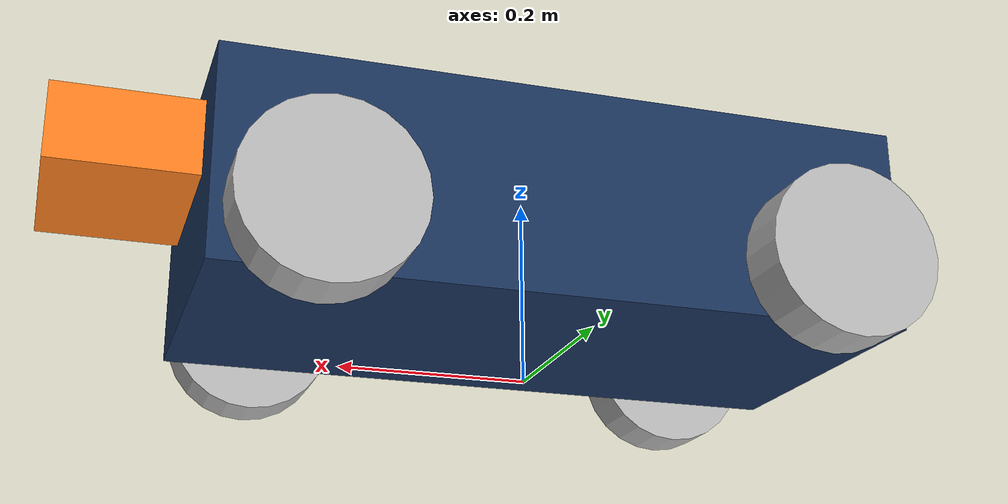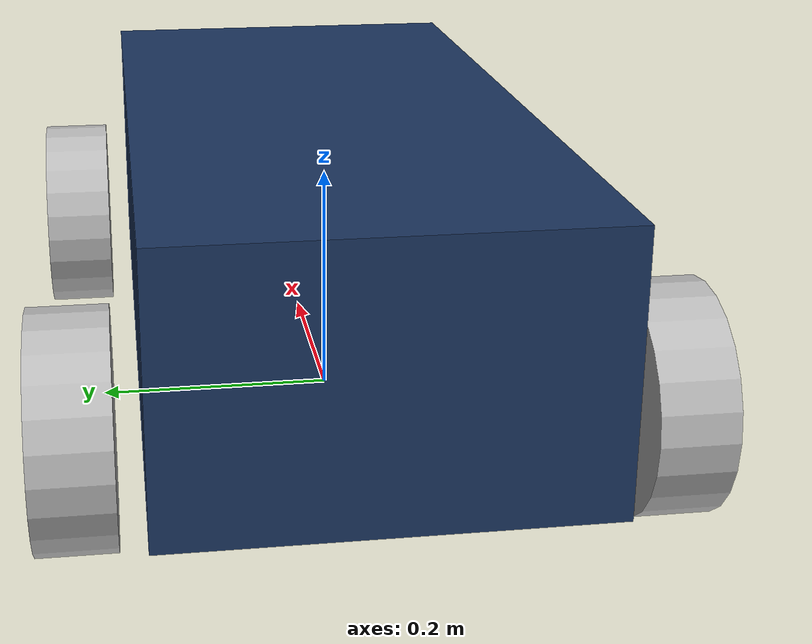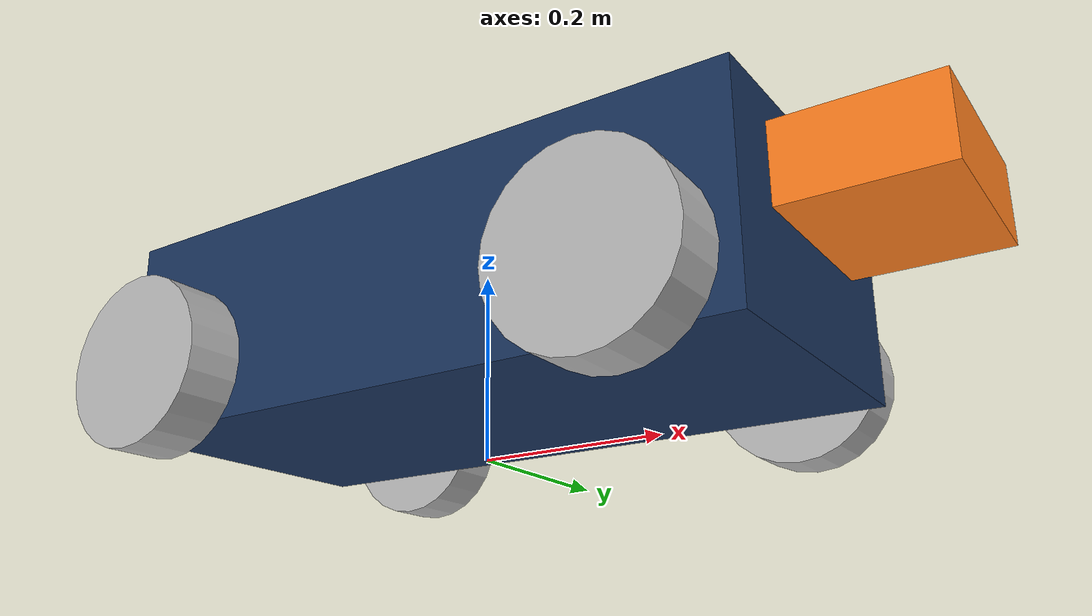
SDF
<?xml version="1.0"?>
<sdf version="1.9">
  <model name="thunder">
    <pose>0 0 0.15 0 0 0</pose>

    <link name="base_link">
      <inertial>
        <mass>18.0</mass>
        <inertia>
          <ixx>0.45</ixx>
          <iyy>0.80</iyy>
          <izz>0.95</izz>
          <ixy>0</ixy>
          <ixz>0</ixz>
          <iyz>0</iyz>
        </inertia>
      </inertial>
      <collision name="body_collision">
        <geometry>
          <box>
            <size>0.72 0.34 0.22</size>
          </box>
        </geometry>
        <surface>
          <friction>
            <ode>
              <mu>1.0</mu>
              <mu2>1.0</mu2>
            </ode>
          </friction>
        </surface>
      </collision>
      <visual name="body_visual">
        <geometry>
          <box>
            <size>0.72 0.34 0.22</size>
          </box>
        </geometry>
        <material>
          <ambient>0.08 0.14 0.22 1</ambient>
          <diffuse>0.10 0.20 0.36 1</diffuse>
        </material>
      </visual>
      <visual name="front_marker_visual">
        <pose>0.43 0 0.04 0 0 0</pose>
        <geometry>
          <box>
            <size>0.16 0.20 0.08</size>
          </box>
        </geometry>
        <material>
          <ambient>0.95 0.42 0.08 1</ambient>
          <diffuse>1.0 0.50 0.12 1</diffuse>
        </material>
      </visual>
    </link>

    <link name="front_left_wheel">
      <pose>0.26 0.22 -0.06 1.5708 0 0</pose>
      <inertial>
        <mass>0.8</mass>
        <inertia>
          <ixx>0.004</ixx>
          <iyy>0.004</iyy>
          <izz>0.004</izz>
          <ixy>0</ixy>
          <ixz>0</ixz>
          <iyz>0</iyz>
        </inertia>
      </inertial>
      <collision name="collision">
        <geometry>
          <cylinder>
            <radius>0.09</radius>
            <length>0.06</length>
          </cylinder>
        </geometry>
        <surface>
          <friction>
            <ode>
              <mu>1.4</mu>
              <mu2>1.4</mu2>
            </ode>
          </friction>
        </surface>
      </collision>
      <visual name="visual">
        <geometry>
          <cylinder>
            <radius>0.09</radius>
            <length>0.06</length>
          </cylinder>
        </geometry>
      </visual>
    </link>
    <joint name="front_left_wheel_joint" type="revolute">
      <parent>base_link</parent>
      <child>front_left_wheel</child>
      <axis>
        <xyz>0 1 0</xyz>
        <dynamics>
          <damping>1.0</damping>
          <friction>0.4</friction>
        </dynamics>
      </axis>
    </joint>

    <link name="rear_left_wheel">
      <pose>-0.26 0.22 -0.06 1.5708 0 0</pose>
      <inertial>
        <mass>0.8</mass>
        <inertia>
          <ixx>0.004</ixx>
          <iyy>0.004</iyy>
          <izz>0.004</izz>
          <ixy>0</ixy>
          <ixz>0</ixz>
          <iyz>0</iyz>
        </inertia>
      </inertial>
      <collision name="collision">
        <geometry>
          <cylinder>
            <radius>0.09</radius>
            <length>0.06</length>
          </cylinder>
        </geometry>
        <surface>
          <friction>
            <ode>
              <mu>1.4</mu>
              <mu2>1.4</mu2>
            </ode>
          </friction>
        </surface>
      </collision>
      <visual name="visual">
        <geometry>
          <cylinder>
            <radius>0.09</radius>
            <length>0.06</length>
          </cylinder>
        </geometry>
      </visual>
    </link>
    <joint name="rear_left_wheel_joint" type="revolute">
      <parent>base_link</parent>
      <child>rear_left_wheel</child>
      <axis>
        <xyz>0 1 0</xyz>
        <dynamics>
          <damping>1.0</damping>
          <friction>0.4</friction>
        </dynamics>
      </axis>
    </joint>

    <link name="front_right_wheel">
      <pose>0.26 -0.22 -0.06 1.5708 0 0</pose>
      <inertial>
        <mass>0.8</mass>
        <inertia>
          <ixx>0.004</ixx>
          <iyy>0.004</iyy>
          <izz>0.004</izz>
          <ixy>0</ixy>
          <ixz>0</ixz>
          <iyz>0</iyz>
        </inertia>
      </inertial>
      <collision name="collision">
        <geometry>
          <cylinder>
            <radius>0.09</radius>
            <length>0.06</length>
          </cylinder>
        </geometry>
        <surface>
          <friction>
            <ode>
              <mu>1.4</mu>
              <mu2>1.4</mu2>
            </ode>
          </friction>
        </surface>
      </collision>
      <visual name="visual">
        <geometry>
          <cylinder>
            <radius>0.09</radius>
            <length>0.06</length>
          </cylinder>
        </geometry>
      </visual>
    </link>
    <joint name="front_right_wheel_joint" type="revolute">
      <parent>base_link</parent>
      <child>front_right_wheel</child>
      <axis>
        <xyz>0 1 0</xyz>
        <dynamics>
          <damping>1.0</damping>
          <friction>0.4</friction>
        </dynamics>
      </axis>
    </joint>

    <link name="rear_right_wheel">
      <pose>-0.26 -0.22 -0.06 1.5708 0 0</pose>
      <inertial>
        <mass>0.8</mass>
        <inertia>
          <ixx>0.004</ixx>
          <iyy>0.004</iyy>
          <izz>0.004</izz>
          <ixy>0</ixy>
          <ixz>0</ixz>
          <iyz>0</iyz>
        </inertia>
      </inertial>
      <collision name="collision">
        <geometry>
          <cylinder>
            <radius>0.09</radius>
            <length>0.06</length>
          </cylinder>
        </geometry>
        <surface>
          <friction>
            <ode>
              <mu>1.4</mu>
              <mu2>1.4</mu2>
            </ode>
          </friction>
        </surface>
      </collision>
      <visual name="visual">
        <geometry>
          <cylinder>
            <radius>0.09</radius>
            <length>0.06</length>
          </cylinder>
        </geometry>
      </visual>
    </link>
    <joint name="rear_right_wheel_joint" type="revolute">
      <parent>base_link</parent>
      <child>rear_right_wheel</child>
      <axis>
        <xyz>0 1 0</xyz>
        <dynamics>
          <damping>1.0</damping>
          <friction>0.4</friction>
        </dynamics>
      </axis>
    </joint>

    <link name="lidar_link">
      <pose>0.28 0 0.20 0 0 0</pose>
      <sensor name="lidar" type="gpu_lidar">
        <update_rate>10</update_rate>
        <ray>
          <scan>
            <horizontal>
              <samples>720</samples>
              <resolution>1</resolution>
              <min_angle>-3.14159</min_angle>
              <max_angle>3.14159</max_angle>
            </horizontal>
            <vertical>
              <samples>16</samples>
              <resolution>1</resolution>
              <min_angle>-0.25</min_angle>
              <max_angle>0.25</max_angle>
            </vertical>
          </scan>
          <range>
            <min>0.2</min>
            <max>8.0</max>
            <resolution>0.02</resolution>
          </range>
        </ray>
        <always_on>true</always_on>
        <visualize>true</visualize>
      </sensor>
    </link>
    <joint name="lidar_joint" type="fixed">
      <parent>base_link</parent>
      <child>lidar_link</child>
    </joint>

    <link name="camera_link">
      <pose>0.36 0 0.22 0 0 0</pose>
      <sensor name="camera" type="camera">
        <update_rate>15</update_rate>
        <camera>
          <horizontal_fov>1.047</horizontal_fov>
          <image>
            <width>640</width>
            <height>480</height>
            <format>R8G8B8</format>
          </image>
          <clip>
            <near>0.1</near>
            <far>30.0</far>
          </clip>
        </camera>
        <always_on>true</always_on>
        <visualize>false</visualize>
      </sensor>
      <sensor name="depth_camera" type="depth_camera">
        <update_rate>15</update_rate>
        <camera>
          <horizontal_fov>1.047</horizontal_fov>
          <image>
            <width>640</width>
            <height>480</height>
            <format>R_FLOAT32</format>
          </image>
          <clip>
            <near>0.1</near>
            <far>10.0</far>
          </clip>
        </camera>
        <always_on>true</always_on>
        <visualize>false</visualize>
      </sensor>
    </link>
    <joint name="camera_joint" type="fixed">
      <parent>base_link</parent>
      <child>camera_link</child>
    </joint>

    <plugin filename="gz-sim-diff-drive-system" name="gz::sim::systems::DiffDrive">
      <left_joint>front_left_wheel_joint</left_joint>
      <left_joint>rear_left_wheel_joint</left_joint>
      <right_joint>front_right_wheel_joint</right_joint>
      <right_joint>rear_right_wheel_joint</right_joint>
      <wheel_separation>0.44</wheel_separation>
      <wheel_radius>0.09</wheel_radius>
      <odom_publish_frequency>50</odom_publish_frequency>
      <topic>/lingtu/gazebo/cmd_vel</topic>
      <odom_topic>/model/thunder/odometry</odom_topic>
      <frame_id>odom</frame_id>
      <child_frame_id>body</child_frame_id>
    </plugin>
  </model>
</sdf>
